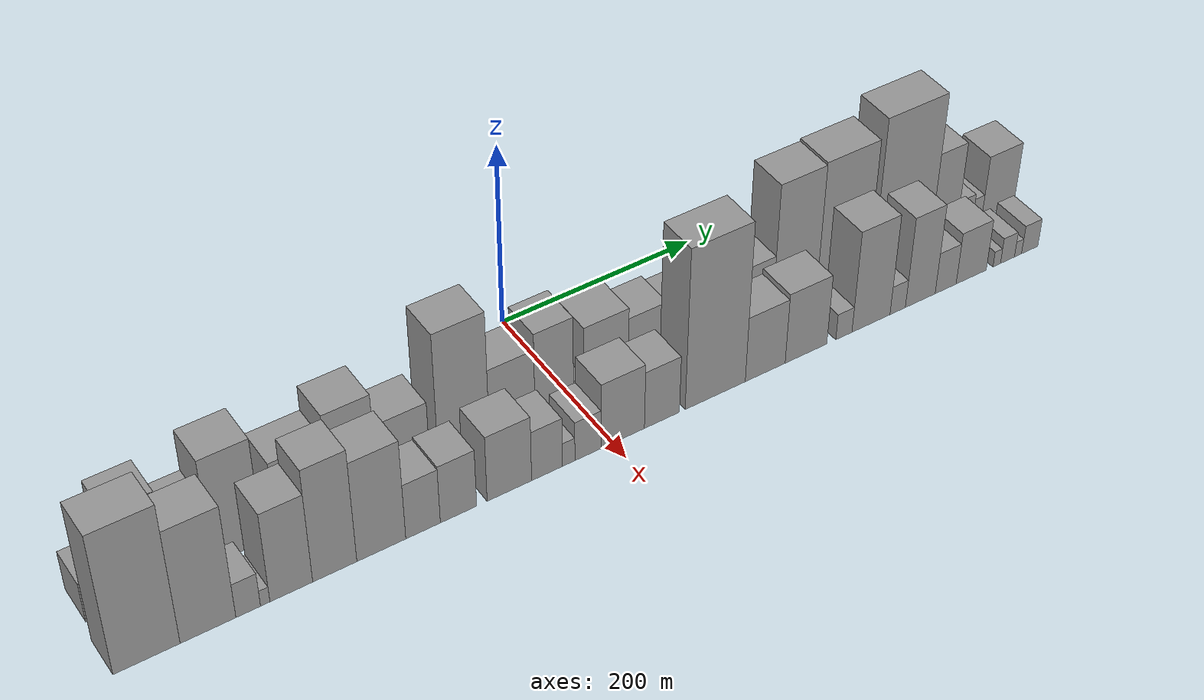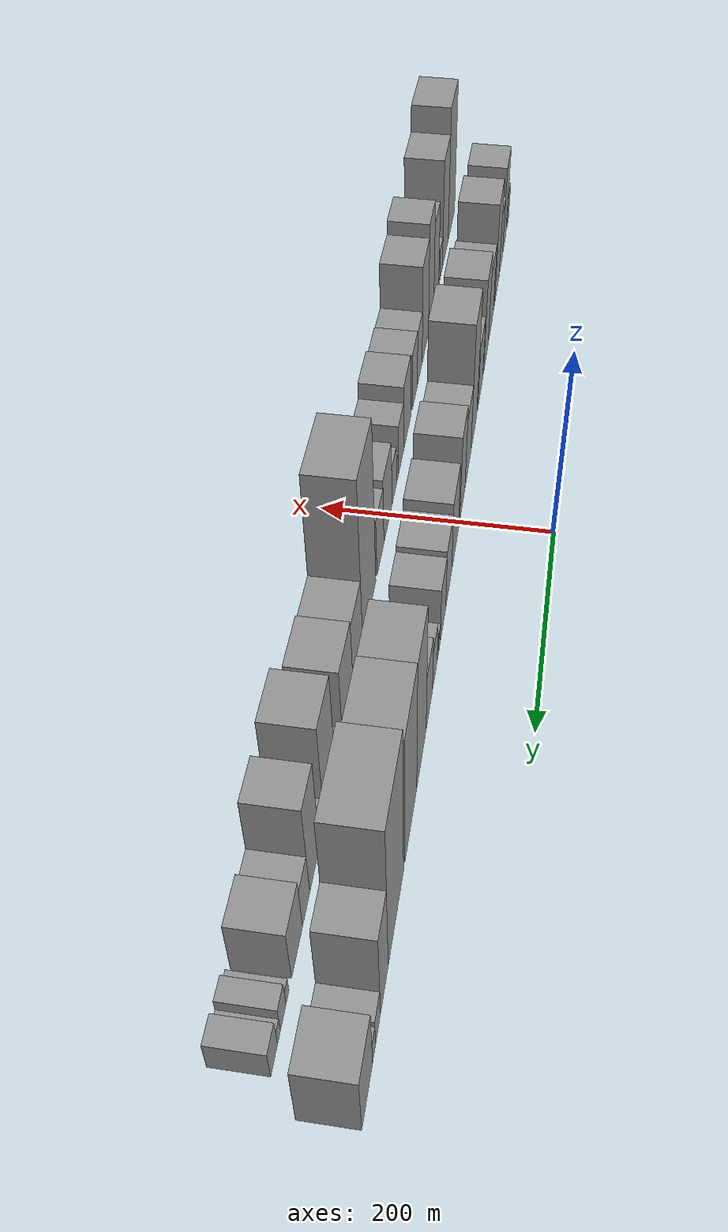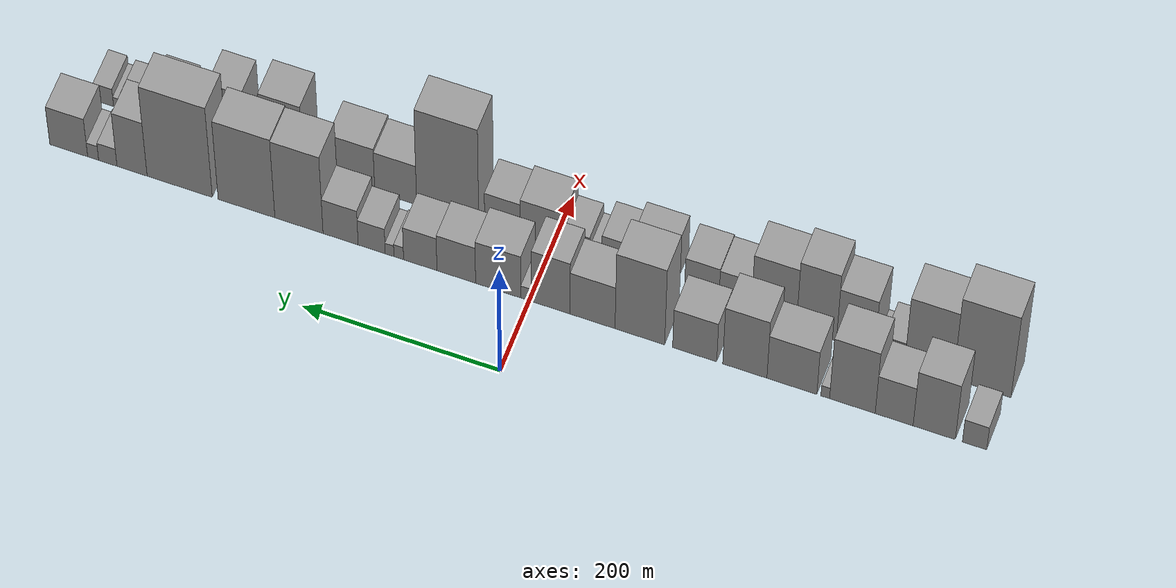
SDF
<sdf version="1.6">
 <world name="default">
  <scene>
   <sky><clouds><speed>12</speed></clouds></sky>
   <ambient>0.4 0.4 0.4 1</ambient>
   <background>0.7 0.7 0.7 1</background>
   <shadows>1</shadows>
  </scene>
  <gravity>0 0 -9.8066</gravity>
  <magnetic_field>6e-06 2.3e-05 -4.2e-05</magnetic_field>
  <physics default="0" name="default_physics" type="ode">
   <ode>
    <solver>
     <type>quick</type>
     <iters>10</iters>
     <sor>1.0</sor>
     <use_dynamic_moi_rescaling>0</use_dynamic_moi_rescaling>
    </solver>
    <constraints>
     <cfm>0</cfm>
     <erp>0.2</erp>
     <contact_max_correcting_vel>100</contact_max_correcting_vel>
     <contact_surface_layer>0.001</contact_surface_layer>
    </constraints>
   </ode>
   <max_step_size>0.004</max_step_size>
   <real_time_factor>1</real_time_factor>
   <real_time_update_rate>250</real_time_update_rate>
  </physics>
  <light name="sun" type="directional">
   <pose>0 0 10 0 0 0</pose>
   <diffuse>0.8 0.8 0.8 1</diffuse>
   <specular>0.2 0.2 0.2 1</specular>
   <attenuation>
    <range>1000</range>
    <constant>0.9</constant>
    <linear>0.01</linear>
    <quadratic>0.001</quadratic>
   </attenuation>
   <direction>-0.5 0.1 -0.9</direction>
  </light>
  <model name="building_1">
   <static>1</static>
   <pose>100.0000 -443.9965 0 0.000000 0.000000 0.000000</pose>
   <link name="link">
    <pose>0 0 22.50 0 0 0</pose>
    <collision name="collision"><geometry><box><size>40.0000 24.0070 45.0000</size></box></geometry></collision>
    <visual name="visual">
     <cast_shadows>0</cast_shadows>
     <geometry><box><size>40.0000 24.0070 45.0000</size></box></geometry>
     <material>
      <script>
       <uri>model://grey_wall/materials/scripts</uri>
       <uri>model://grey_wall/materials/textures</uri>
       <name>vrc/grey_wall</name>
      </script>
     </material>
    </visual>
   </link>
  </model>
  <model name="building_2">
   <static>1</static>
   <pose>100.0000 -404.1018 0 0.000000 0.000000 0.000000</pose>
   <link name="link">
    <pose>0 0 54.00 0 0 0</pose>
    <collision name="collision"><geometry><box><size>40.0000 41.7825 108.0000</size></box></geometry></collision>
    <visual name="visual">
     <cast_shadows>0</cast_shadows>
     <geometry><box><size>40.0000 41.7825 108.0000</size></box></geometry>
     <material>
      <script>
       <uri>model://grey_wall/materials/scripts</uri>
       <uri>model://grey_wall/materials/textures</uri>
       <name>vrc/grey_wall</name>
      </script>
     </material>
    </visual>
   </link>
  </model>
  <model name="building_3">
   <static>1</static>
   <pose>100.0000 -364.4236 0 0.000000 0.000000 0.000000</pose>
   <link name="link">
    <pose>0 0 37.50 0 0 0</pose>
    <collision name="collision"><geometry><box><size>40.0000 37.5738 75.0000</size></box></geometry></collision>
    <visual name="visual">
     <cast_shadows>0</cast_shadows>
     <geometry><box><size>40.0000 37.5738 75.0000</size></box></geometry>
     <material>
      <script>
       <uri>model://grey_wall/materials/scripts</uri>
       <uri>model://grey_wall/materials/textures</uri>
       <name>vrc/grey_wall</name>
      </script>
     </material>
    </visual>
   </link>
  </model>
  <model name="building_4">
   <static>1</static>
   <pose>100.0000 -322.9871 0 0.000000 0.000000 0.000000</pose>
   <link name="link">
    <pose>0 0 60.00 0 0 0</pose>
    <collision name="collision"><geometry><box><size>40.0000 45.2993 120.0000</size></box></geometry></collision>
    <visual name="visual">
     <cast_shadows>0</cast_shadows>
     <geometry><box><size>40.0000 45.2993 120.0000</size></box></geometry>
     <material>
      <script>
       <uri>model://grey_wall/materials/scripts</uri>
       <uri>model://grey_wall/materials/textures</uri>
       <name>vrc/grey_wall</name>
      </script>
     </material>
    </visual>
   </link>
  </model>
  <model name="building_5">
   <static>1</static>
   <pose>100.0000 -296.0059 0 0.000000 0.000000 0.000000</pose>
   <link name="link">
    <pose>0 0 10.50 0 0 0</pose>
    <collision name="collision"><geometry><box><size>40.0000 8.6630 21.0000</size></box></geometry></collision>
    <visual name="visual">
     <cast_shadows>0</cast_shadows>
     <geometry><box><size>40.0000 8.6630 21.0000</size></box></geometry>
     <material>
      <script>
       <uri>model://grey_wall/materials/scripts</uri>
       <uri>model://grey_wall/materials/textures</uri>
       <name>vrc/grey_wall</name>
      </script>
     </material>
    </visual>
   </link>
  </model>
  <model name="building_6">
   <static>1</static>
   <pose>100.0000 -262.7974 0 0.000000 0.000000 0.000000</pose>
   <link name="link">
    <pose>0 0 42.00 0 0 0</pose>
    <collision name="collision"><geometry><box><size>40.0000 49.7541 84.0000</size></box></geometry></collision>
    <visual name="visual">
     <cast_shadows>0</cast_shadows>
     <geometry><box><size>40.0000 49.7541 84.0000</size></box></geometry>
     <material>
      <script>
       <uri>model://grey_wall/materials/scripts</uri>
       <uri>model://grey_wall/materials/textures</uri>
       <name>vrc/grey_wall</name>
      </script>
     </material>
    </visual>
   </link>
  </model>
  <model name="building_7">
   <static>1</static>
   <pose>100.0000 -215.8336 0 0.000000 0.000000 0.000000</pose>
   <link name="link">
    <pose>0 0 55.50 0 0 0</pose>
    <collision name="collision"><geometry><box><size>40.0000 44.1734 111.0000</size></box></geometry></collision>
    <visual name="visual">
     <cast_shadows>0</cast_shadows>
     <geometry><box><size>40.0000 44.1734 111.0000</size></box></geometry>
     <material>
      <script>
       <uri>model://grey_wall/materials/scripts</uri>
       <uri>model://grey_wall/materials/textures</uri>
       <name>vrc/grey_wall</name>
      </script>
     </material>
    </visual>
   </link>
  </model>
  <model name="building_8">
   <static>1</static>
   <pose>100.0000 -165.6648 0 0.000000 0.000000 0.000000</pose>
   <link name="link">
    <pose>0 0 37.50 0 0 0</pose>
    <collision name="collision"><geometry><box><size>40.0000 44.1642 75.0000</size></box></geometry></collision>
    <visual name="visual">
     <cast_shadows>0</cast_shadows>
     <geometry><box><size>40.0000 44.1642 75.0000</size></box></geometry>
     <material>
      <script>
       <uri>model://grey_wall/materials/scripts</uri>
       <uri>model://grey_wall/materials/textures</uri>
       <name>vrc/grey_wall</name>
      </script>
     </material>
    </visual>
   </link>
  </model>
  <model name="building_9">
   <static>1</static>
   <pose>100.0000 -110.6549 0 0.000000 0.000000 0.000000</pose>
   <link name="link">
    <pose>0 0 73.50 0 0 0</pose>
    <collision name="collision"><geometry><box><size>40.0000 49.8557 147.0000</size></box></geometry></collision>
    <visual name="visual">
     <cast_shadows>0</cast_shadows>
     <geometry><box><size>40.0000 49.8557 147.0000</size></box></geometry>
     <material>
      <script>
       <uri>model://grey_wall/materials/scripts</uri>
       <uri>model://grey_wall/materials/textures</uri>
       <name>vrc/grey_wall</name>
      </script>
     </material>
    </visual>
   </link>
  </model>
  <model name="building_10">
   <static>1</static>
   <pose>100.0000 -62.9786 0 0.000000 0.000000 0.000000</pose>
   <link name="link">
    <pose>0 0 40.50 0 0 0</pose>
    <collision name="collision"><geometry><box><size>40.0000 45.4970 81.0000</size></box></geometry></collision>
    <visual name="visual">
     <cast_shadows>0</cast_shadows>
     <geometry><box><size>40.0000 45.4970 81.0000</size></box></geometry>
     <material>
      <script>
       <uri>model://grey_wall/materials/scripts</uri>
       <uri>model://grey_wall/materials/textures</uri>
       <name>vrc/grey_wall</name>
      </script>
     </material>
    </visual>
   </link>
  </model>
  <model name="building_11">
   <static>1</static>
   <pose>100.0000 -20.7784 0 0.000000 0.000000 0.000000</pose>
   <link name="link">
    <pose>0 0 49.50 0 0 0</pose>
    <collision name="collision"><geometry><box><size>40.0000 38.9032 99.0000</size></box></geometry></collision>
    <visual name="visual">
     <cast_shadows>0</cast_shadows>
     <geometry><box><size>40.0000 38.9032 99.0000</size></box></geometry>
     <material>
      <script>
       <uri>model://grey_wall/materials/scripts</uri>
       <uri>model://grey_wall/materials/textures</uri>
       <name>vrc/grey_wall</name>
      </script>
     </material>
    </visual>
   </link>
  </model>
  <model name="building_12">
   <static>1</static>
   <pose>100.0000 3.9678 0 0.000000 0.000000 0.000000</pose>
   <link name="link">
    <pose>0 0 12.00 0 0 0</pose>
    <collision name="collision"><geometry><box><size>40.0000 10.5892 24.0000</size></box></geometry></collision>
    <visual name="visual">
     <cast_shadows>0</cast_shadows>
     <geometry><box><size>40.0000 10.5892 24.0000</size></box></geometry>
     <material>
      <script>
       <uri>model://grey_wall/materials/scripts</uri>
       <uri>model://grey_wall/materials/textures</uri>
       <name>vrc/grey_wall</name>
      </script>
     </material>
    </visual>
   </link>
  </model>
  <model name="building_13">
   <static>1</static>
   <pose>100.0000 32.1512 0 0.000000 0.000000 0.000000</pose>
   <link name="link">
    <pose>0 0 40.50 0 0 0</pose>
    <collision name="collision"><geometry><box><size>40.0000 45.7778 81.0000</size></box></geometry></collision>
    <visual name="visual">
     <cast_shadows>0</cast_shadows>
     <geometry><box><size>40.0000 45.7778 81.0000</size></box></geometry>
     <material>
      <script>
       <uri>model://grey_wall/materials/scripts</uri>
       <uri>model://grey_wall/materials/textures</uri>
       <name>vrc/grey_wall</name>
      </script>
     </material>
    </visual>
   </link>
  </model>
  <model name="building_14">
   <static>1</static>
   <pose>100.0000 74.6157 0 0.000000 0.000000 0.000000</pose>
   <link name="link">
    <pose>0 0 34.50 0 0 0</pose>
    <collision name="collision"><geometry><box><size>40.0000 39.1512 69.0000</size></box></geometry></collision>
    <visual name="visual">
     <cast_shadows>0</cast_shadows>
     <geometry><box><size>40.0000 39.1512 69.0000</size></box></geometry>
     <material>
      <script>
       <uri>model://grey_wall/materials/scripts</uri>
       <uri>model://grey_wall/materials/textures</uri>
       <name>vrc/grey_wall</name>
      </script>
     </material>
    </visual>
   </link>
  </model>
  <model name="building_15">
   <static>1</static>
   <pose>100.0000 111.1428 0 0.000000 0.000000 0.000000</pose>
   <link name="link">
    <pose>0 0 31.50 0 0 0</pose>
    <collision name="collision"><geometry><box><size>40.0000 33.9030 63.0000</size></box></geometry></collision>
    <visual name="visual">
     <cast_shadows>0</cast_shadows>
     <geometry><box><size>40.0000 33.9030 63.0000</size></box></geometry>
     <material>
      <script>
       <uri>model://grey_wall/materials/scripts</uri>
       <uri>model://grey_wall/materials/textures</uri>
       <name>vrc/grey_wall</name>
      </script>
     </material>
    </visual>
   </link>
  </model>
  <model name="building_16">
   <static>1</static>
   <pose>100.0000 132.9962 0 0.000000 0.000000 0.000000</pose>
   <link name="link">
    <pose>0 0 12.00 0 0 0</pose>
    <collision name="collision"><geometry><box><size>40.0000 9.8038 24.0000</size></box></geometry></collision>
    <visual name="visual">
     <cast_shadows>0</cast_shadows>
     <geometry><box><size>40.0000 9.8038 24.0000</size></box></geometry>
     <material>
      <script>
       <uri>model://grey_wall/materials/scripts</uri>
       <uri>model://grey_wall/materials/textures</uri>
       <name>vrc/grey_wall</name>
      </script>
     </material>
    </visual>
   </link>
  </model>
  <model name="building_17">
   <static>1</static>
   <pose>100.0000 142.3267 0 0.000000 0.000000 0.000000</pose>
   <link name="link">
    <pose>0 0 10.50 0 0 0</pose>
    <collision name="collision"><geometry><box><size>40.0000 8.8571 21.0000</size></box></geometry></collision>
    <visual name="visual">
     <cast_shadows>0</cast_shadows>
     <geometry><box><size>40.0000 8.8571 21.0000</size></box></geometry>
     <material>
      <script>
       <uri>model://grey_wall/materials/scripts</uri>
       <uri>model://grey_wall/materials/textures</uri>
       <name>vrc/grey_wall</name>
      </script>
     </material>
    </visual>
   </link>
  </model>
  <model name="building_18">
   <static>1</static>
   <pose>100.0000 160.5470 0 0.000000 0.000000 0.000000</pose>
   <link name="link">
    <pose>0 0 24.00 0 0 0</pose>
    <collision name="collision"><geometry><box><size>40.0000 27.5835 48.0000</size></box></geometry></collision>
    <visual name="visual">
     <cast_shadows>0</cast_shadows>
     <geometry><box><size>40.0000 27.5835 48.0000</size></box></geometry>
     <material>
      <script>
       <uri>model://grey_wall/materials/scripts</uri>
       <uri>model://grey_wall/materials/textures</uri>
       <name>vrc/grey_wall</name>
      </script>
     </material>
    </visual>
   </link>
  </model>
  <model name="building_19">
   <static>1</static>
   <pose>100.0000 192.2544 0 0.000000 0.000000 0.000000</pose>
   <link name="link">
    <pose>0 0 33.00 0 0 0</pose>
    <collision name="collision"><geometry><box><size>40.0000 35.8312 66.0000</size></box></geometry></collision>
    <visual name="visual">
     <cast_shadows>0</cast_shadows>
     <geometry><box><size>40.0000 35.8312 66.0000</size></box></geometry>
     <material>
      <script>
       <uri>model://grey_wall/materials/scripts</uri>
       <uri>model://grey_wall/materials/textures</uri>
       <name>vrc/grey_wall</name>
      </script>
     </material>
    </visual>
   </link>
  </model>
  <model name="building_20">
   <static>1</static>
   <pose>100.0000 234.7998 0 0.000000 0.000000 0.000000</pose>
   <link name="link">
    <pose>0 0 73.50 0 0 0</pose>
    <collision name="collision"><geometry><box><size>40.0000 49.2597 147.0000</size></box></geometry></collision>
    <visual name="visual">
     <cast_shadows>0</cast_shadows>
     <geometry><box><size>40.0000 49.2597 147.0000</size></box></geometry>
     <material>
      <script>
       <uri>model://grey_wall/materials/scripts</uri>
       <uri>model://grey_wall/materials/textures</uri>
       <name>vrc/grey_wall</name>
      </script>
     </material>
    </visual>
   </link>
  </model>
  <model name="building_21">
   <static>1</static>
   <pose>100.0000 288.5176 0 0.000000 0.000000 0.000000</pose>
   <link name="link">
    <pose>0 0 75.00 0 0 0</pose>
    <collision name="collision"><geometry><box><size>40.0000 58.1758 150.0000</size></box></geometry></collision>
    <visual name="visual">
     <cast_shadows>0</cast_shadows>
     <geometry><box><size>40.0000 58.1758 150.0000</size></box></geometry>
     <material>
      <script>
       <uri>model://grey_wall/materials/scripts</uri>
       <uri>model://grey_wall/materials/textures</uri>
       <name>vrc/grey_wall</name>
      </script>
     </material>
    </visual>
   </link>
  </model>
  <model name="building_22">
   <static>1</static>
   <pose>100.0000 357.1346 0 0.000000 0.000000 0.000000</pose>
   <link name="link">
    <pose>0 0 85.50 0 0 0</pose>
    <collision name="collision"><geometry><box><size>40.0000 67.0583 171.0000</size></box></geometry></collision>
    <visual name="visual">
     <cast_shadows>0</cast_shadows>
     <geometry><box><size>40.0000 67.0583 171.0000</size></box></geometry>
     <material>
      <script>
       <uri>model://grey_wall/materials/scripts</uri>
       <uri>model://grey_wall/materials/textures</uri>
       <name>vrc/grey_wall</name>
      </script>
     </material>
    </visual>
   </link>
  </model>
  <model name="building_23">
   <static>1</static>
   <pose>100.0000 406.2230 0 0.000000 0.000000 0.000000</pose>
   <link name="link">
    <pose>0 0 51.00 0 0 0</pose>
    <collision name="collision"><geometry><box><size>40.0000 31.1185 102.0000</size></box></geometry></collision>
    <visual name="visual">
     <cast_shadows>0</cast_shadows>
     <geometry><box><size>40.0000 31.1185 102.0000</size></box></geometry>
     <material>
      <script>
       <uri>model://grey_wall/materials/scripts</uri>
       <uri>model://grey_wall/materials/textures</uri>
       <name>vrc/grey_wall</name>
      </script>
     </material>
    </visual>
   </link>
  </model>
  <model name="building_24">
   <static>1</static>
   <pose>100.0000 431.2539 0 0.000000 0.000000 0.000000</pose>
   <link name="link">
    <pose>0 0 16.50 0 0 0</pose>
    <collision name="collision"><geometry><box><size>40.0000 18.9434 33.0000</size></box></geometry></collision>
    <visual name="visual">
     <cast_shadows>0</cast_shadows>
     <geometry><box><size>40.0000 18.9434 33.0000</size></box></geometry>
     <material>
      <script>
       <uri>model://grey_wall/materials/scripts</uri>
       <uri>model://grey_wall/materials/textures</uri>
       <name>vrc/grey_wall</name>
      </script>
     </material>
    </visual>
   </link>
  </model>
  <model name="building_25">
   <static>1</static>
   <pose>100.0000 446.4016 0 0.000000 0.000000 0.000000</pose>
   <link name="link">
    <pose>0 0 13.50 0 0 0</pose>
    <collision name="collision"><geometry><box><size>40.0000 11.3519 27.0000</size></box></geometry></collision>
    <visual name="visual">
     <cast_shadows>0</cast_shadows>
     <geometry><box><size>40.0000 11.3519 27.0000</size></box></geometry>
     <material>
      <script>
       <uri>model://grey_wall/materials/scripts</uri>
       <uri>model://grey_wall/materials/textures</uri>
       <name>vrc/grey_wall</name>
      </script>
     </material>
    </visual>
   </link>
  </model>
  <model name="building_26">
   <static>1</static>
   <pose>100.0000 471.6284 0 0.000000 0.000000 0.000000</pose>
   <link name="link">
    <pose>0 0 36.00 0 0 0</pose>
    <collision name="collision"><geometry><box><size>40.0000 39.1017 72.0000</size></box></geometry></collision>
    <visual name="visual">
     <cast_shadows>0</cast_shadows>
     <geometry><box><size>40.0000 39.1017 72.0000</size></box></geometry>
     <material>
      <script>
       <uri>model://grey_wall/materials/scripts</uri>
       <uri>model://grey_wall/materials/textures</uri>
       <name>vrc/grey_wall</name>
      </script>
     </material>
    </visual>
   </link>
  </model>
  <model name="building_27">
   <static>1</static>
   <pose>160.0000 -431.4479 0 0.000000 0.000000 0.000000</pose>
   <link name="link">
    <pose>0 0 79.50 0 0 0</pose>
    <collision name="collision"><geometry><box><size>40.0000 57.1043 159.0000</size></box></geometry></collision>
    <visual name="visual">
     <cast_shadows>0</cast_shadows>
     <geometry><box><size>40.0000 57.1043 159.0000</size></box></geometry>
     <material>
      <script>
       <uri>model://grey_wall/materials/scripts</uri>
       <uri>model://grey_wall/materials/textures</uri>
       <name>vrc/grey_wall</name>
      </script>
     </material>
    </visual>
   </link>
  </model>
  <model name="building_28">
   <static>1</static>
   <pose>160.0000 -378.7312 0 0.000000 0.000000 0.000000</pose>
   <link name="link">
    <pose>0 0 64.50 0 0 0</pose>
    <collision name="collision"><geometry><box><size>40.0000 48.3291 129.0000</size></box></geometry></collision>
    <visual name="visual">
     <cast_shadows>0</cast_shadows>
     <geometry><box><size>40.0000 48.3291 129.0000</size></box></geometry>
     <material>
      <script>
       <uri>model://grey_wall/materials/scripts</uri>
       <uri>model://grey_wall/materials/textures</uri>
       <name>vrc/grey_wall</name>
      </script>
     </material>
    </visual>
   </link>
  </model>
  <model name="building_29">
   <static>1</static>
   <pose>160.0000 -343.7472 0 0.000000 0.000000 0.000000</pose>
   <link name="link">
    <pose>0 0 19.50 0 0 0</pose>
    <collision name="collision"><geometry><box><size>40.0000 21.6389 39.0000</size></box></geometry></collision>
    <visual name="visual">
     <cast_shadows>0</cast_shadows>
     <geometry><box><size>40.0000 21.6389 39.0000</size></box></geometry>
     <material>
      <script>
       <uri>model://grey_wall/materials/scripts</uri>
       <uri>model://grey_wall/materials/textures</uri>
       <name>vrc/grey_wall</name>
      </script>
     </material>
    </visual>
   </link>
  </model>
  <model name="building_30">
   <static>1</static>
   <pose>160.0000 -328.7822 0 0.000000 0.000000 0.000000</pose>
   <link name="link">
    <pose>0 0 9.00 0 0 0</pose>
    <collision name="collision"><geometry><box><size>40.0000 8.2911 18.0000</size></box></geometry></collision>
    <visual name="visual">
     <cast_shadows>0</cast_shadows>
     <geometry><box><size>40.0000 8.2911 18.0000</size></box></geometry>
     <material>
      <script>
       <uri>model://grey_wall/materials/scripts</uri>
       <uri>model://grey_wall/materials/textures</uri>
       <name>vrc/grey_wall</name>
      </script>
     </material>
    </visual>
   </link>
  </model>
  <model name="building_31">
   <static>1</static>
   <pose>160.0000 -305.5007 0 0.000000 0.000000 0.000000</pose>
   <link name="link">
    <pose>0 0 51.00 0 0 0</pose>
    <collision name="collision"><geometry><box><size>40.0000 38.2719 102.0000</size></box></geometry></collision>
    <visual name="visual">
     <cast_shadows>0</cast_shadows>
     <geometry><box><size>40.0000 38.2719 102.0000</size></box></geometry>
     <material>
      <script>
       <uri>model://grey_wall/materials/scripts</uri>
       <uri>model://grey_wall/materials/textures</uri>
       <name>vrc/grey_wall</name>
      </script>
     </material>
    </visual>
   </link>
  </model>
  <model name="building_32">
   <static>1</static>
   <pose>160.0000 -266.3195 0 0.000000 0.000000 0.000000</pose>
   <link name="link">
    <pose>0 0 64.50 0 0 0</pose>
    <collision name="collision"><geometry><box><size>40.0000 40.0905 129.0000</size></box></geometry></collision>
    <visual name="visual">
     <cast_shadows>0</cast_shadows>
     <geometry><box><size>40.0000 40.0905 129.0000</size></box></geometry>
     <material>
      <script>
       <uri>model://grey_wall/materials/scripts</uri>
       <uri>model://grey_wall/materials/textures</uri>
       <name>vrc/grey_wall</name>
      </script>
     </material>
    </visual>
   </link>
  </model>
  <model name="building_33">
   <static>1</static>
   <pose>160.0000 -223.6515 0 0.000000 0.000000 0.000000</pose>
   <link name="link">
    <pose>0 0 57.00 0 0 0</pose>
    <collision name="collision"><geometry><box><size>40.0000 45.2455 114.0000</size></box></geometry></collision>
    <visual name="visual">
     <cast_shadows>0</cast_shadows>
     <geometry><box><size>40.0000 45.2455 114.0000</size></box></geometry>
     <material>
      <script>
       <uri>model://grey_wall/materials/scripts</uri>
       <uri>model://grey_wall/materials/textures</uri>
       <name>vrc/grey_wall</name>
      </script>
     </material>
    </visual>
   </link>
  </model>
  <model name="building_34">
   <static>1</static>
   <pose>160.0000 -184.8101 0 0.000000 0.000000 0.000000</pose>
   <link name="link">
    <pose>0 0 31.50 0 0 0</pose>
    <collision name="collision"><geometry><box><size>40.0000 32.4373 63.0000</size></box></geometry></collision>
    <visual name="visual">
     <cast_shadows>0</cast_shadows>
     <geometry><box><size>40.0000 32.4373 63.0000</size></box></geometry>
     <material>
      <script>
       <uri>model://grey_wall/materials/scripts</uri>
       <uri>model://grey_wall/materials/textures</uri>
       <name>vrc/grey_wall</name>
      </script>
     </material>
    </visual>
   </link>
  </model>
  <model name="building_35">
   <static>1</static>
   <pose>160.0000 -151.2886 0 0.000000 0.000000 0.000000</pose>
   <link name="link">
    <pose>0 0 33.00 0 0 0</pose>
    <collision name="collision"><geometry><box><size>40.0000 34.6057 66.0000</size></box></geometry></collision>
    <visual name="visual">
     <cast_shadows>0</cast_shadows>
     <geometry><box><size>40.0000 34.6057 66.0000</size></box></geometry>
     <material>
      <script>
       <uri>model://grey_wall/materials/scripts</uri>
       <uri>model://grey_wall/materials/textures</uri>
       <name>vrc/grey_wall</name>
      </script>
     </material>
    </visual>
   </link>
  </model>
  <model name="building_36">
   <static>1</static>
   <pose>160.0000 -102.4016 0 0.000000 0.000000 0.000000</pose>
   <link name="link">
    <pose>0 0 37.50 0 0 0</pose>
    <collision name="collision"><geometry><box><size>40.0000 43.1683 75.0000</size></box></geometry></collision>
    <visual name="visual">
     <cast_shadows>0</cast_shadows>
     <geometry><box><size>40.0000 43.1683 75.0000</size></box></geometry>
     <material>
      <script>
       <uri>model://grey_wall/materials/scripts</uri>
       <uri>model://grey_wall/materials/textures</uri>
       <name>vrc/grey_wall</name>
      </script>
     </material>
    </visual>
   </link>
  </model>
  <model name="building_37">
   <static>1</static>
   <pose>160.0000 -65.6326 0 0.000000 0.000000 0.000000</pose>
   <link name="link">
    <pose>0 0 28.50 0 0 0</pose>
    <collision name="collision"><geometry><box><size>40.0000 30.3695 57.0000</size></box></geometry></collision>
    <visual name="visual">
     <cast_shadows>0</cast_shadows>
     <geometry><box><size>40.0000 30.3695 57.0000</size></box></geometry>
     <material>
      <script>
       <uri>model://grey_wall/materials/scripts</uri>
       <uri>model://grey_wall/materials/textures</uri>
       <name>vrc/grey_wall</name>
      </script>
     </material>
    </visual>
   </link>
  </model>
  <model name="building_38">
   <static>1</static>
   <pose>160.0000 -44.2591 0 0.000000 0.000000 0.000000</pose>
   <link name="link">
    <pose>0 0 13.50 0 0 0</pose>
    <collision name="collision"><geometry><box><size>40.0000 12.3775 27.0000</size></box></geometry></collision>
    <visual name="visual">
     <cast_shadows>0</cast_shadows>
     <geometry><box><size>40.0000 12.3775 27.0000</size></box></geometry>
     <material>
      <script>
       <uri>model://grey_wall/materials/scripts</uri>
       <uri>model://grey_wall/materials/textures</uri>
       <name>vrc/grey_wall</name>
      </script>
     </material>
    </visual>
   </link>
  </model>
  <model name="building_39">
   <static>1</static>
   <pose>160.0000 -25.0416 0 0.000000 0.000000 0.000000</pose>
   <link name="link">
    <pose>0 0 22.50 0 0 0</pose>
    <collision name="collision"><geometry><box><size>40.0000 26.0576 45.0000</size></box></geometry></collision>
    <visual name="visual">
     <cast_shadows>0</cast_shadows>
     <geometry><box><size>40.0000 26.0576 45.0000</size></box></geometry>
     <material>
      <script>
       <uri>model://grey_wall/materials/scripts</uri>
       <uri>model://grey_wall/materials/textures</uri>
       <name>vrc/grey_wall</name>
      </script>
     </material>
    </visual>
   </link>
  </model>
  <model name="building_40">
   <static>1</static>
   <pose>160.0000 10.0388 0 0.000000 0.000000 0.000000</pose>
   <link name="link">
    <pose>0 0 37.50 0 0 0</pose>
    <collision name="collision"><geometry><box><size>40.0000 44.1032 75.0000</size></box></geometry></collision>
    <visual name="visual">
     <cast_shadows>0</cast_shadows>
     <geometry><box><size>40.0000 44.1032 75.0000</size></box></geometry>
     <material>
      <script>
       <uri>model://grey_wall/materials/scripts</uri>
       <uri>model://grey_wall/materials/textures</uri>
       <name>vrc/grey_wall</name>
      </script>
     </material>
    </visual>
   </link>
  </model>
  <model name="building_41">
   <static>1</static>
   <pose>160.0000 50.1400 0 0.000000 0.000000 0.000000</pose>
   <link name="link">
    <pose>0 0 33.00 0 0 0</pose>
    <collision name="collision"><geometry><box><size>40.0000 36.0991 66.0000</size></box></geometry></collision>
    <visual name="visual">
     <cast_shadows>0</cast_shadows>
     <geometry><box><size>40.0000 36.0991 66.0000</size></box></geometry>
     <material>
      <script>
       <uri>model://grey_wall/materials/scripts</uri>
       <uri>model://grey_wall/materials/textures</uri>
       <name>vrc/grey_wall</name>
      </script>
     </material>
    </visual>
   </link>
  </model>
  <model name="building_42">
   <static>1</static>
   <pose>160.0000 105.8316 0 0.000000 0.000000 0.000000</pose>
   <link name="link">
    <pose>0 0 91.50 0 0 0</pose>
    <collision name="collision"><geometry><box><size>40.0000 63.2841 183.0000</size></box></geometry></collision>
    <visual name="visual">
     <cast_shadows>0</cast_shadows>
     <geometry><box><size>40.0000 63.2841 183.0000</size></box></geometry>
     <material>
      <script>
       <uri>model://grey_wall/materials/scripts</uri>
       <uri>model://grey_wall/materials/textures</uri>
       <name>vrc/grey_wall</name>
      </script>
     </material>
    </visual>
   </link>
  </model>
  <model name="building_43">
   <static>1</static>
   <pose>160.0000 158.9096 0 0.000000 0.000000 0.000000</pose>
   <link name="link">
    <pose>0 0 37.50 0 0 0</pose>
    <collision name="collision"><geometry><box><size>40.0000 42.8721 75.0000</size></box></geometry></collision>
    <visual name="visual">
     <cast_shadows>0</cast_shadows>
     <geometry><box><size>40.0000 42.8721 75.0000</size></box></geometry>
     <material>
      <script>
       <uri>model://grey_wall/materials/scripts</uri>
       <uri>model://grey_wall/materials/textures</uri>
       <name>vrc/grey_wall</name>
      </script>
     </material>
    </visual>
   </link>
  </model>
  <model name="building_44">
   <static>1</static>
   <pose>160.0000 203.1204 0 0.000000 0.000000 0.000000</pose>
   <link name="link">
    <pose>0 0 40.50 0 0 0</pose>
    <collision name="collision"><geometry><box><size>40.0000 45.5495 81.0000</size></box></geometry></collision>
    <visual name="visual">
     <cast_shadows>0</cast_shadows>
     <geometry><box><size>40.0000 45.5495 81.0000</size></box></geometry>
     <material>
      <script>
       <uri>model://grey_wall/materials/scripts</uri>
       <uri>model://grey_wall/materials/textures</uri>
       <name>vrc/grey_wall</name>
      </script>
     </material>
    </visual>
   </link>
  </model>
  <model name="building_45">
   <static>1</static>
   <pose>160.0000 244.8212 0 0.000000 0.000000 0.000000</pose>
   <link name="link">
    <pose>0 0 15.00 0 0 0</pose>
    <collision name="collision"><geometry><box><size>40.0000 17.8520 30.0000</size></box></geometry></collision>
    <visual name="visual">
     <cast_shadows>0</cast_shadows>
     <geometry><box><size>40.0000 17.8520 30.0000</size></box></geometry>
     <material>
      <script>
       <uri>model://grey_wall/materials/scripts</uri>
       <uri>model://grey_wall/materials/textures</uri>
       <name>vrc/grey_wall</name>
      </script>
     </material>
    </visual>
   </link>
  </model>
  <model name="building_46">
   <static>1</static>
   <pose>160.0000 275.0824 0 0.000000 0.000000 0.000000</pose>
   <link name="link">
    <pose>0 0 58.50 0 0 0</pose>
    <collision name="collision"><geometry><box><size>40.0000 42.6705 117.0000</size></box></geometry></collision>
    <visual name="visual">
     <cast_shadows>0</cast_shadows>
     <geometry><box><size>40.0000 42.6705 117.0000</size></box></geometry>
     <material>
      <script>
       <uri>model://grey_wall/materials/scripts</uri>
       <uri>model://grey_wall/materials/textures</uri>
       <name>vrc/grey_wall</name>
      </script>
     </material>
    </visual>
   </link>
  </model>
  <model name="building_47">
   <static>1</static>
   <pose>160.0000 305.1480 0 0.000000 0.000000 0.000000</pose>
   <link name="link">
    <pose>0 0 16.50 0 0 0</pose>
    <collision name="collision"><geometry><box><size>40.0000 17.4606 33.0000</size></box></geometry></collision>
    <visual name="visual">
     <cast_shadows>0</cast_shadows>
     <geometry><box><size>40.0000 17.4606 33.0000</size></box></geometry>
     <material>
      <script>
       <uri>model://grey_wall/materials/scripts</uri>
       <uri>model://grey_wall/materials/textures</uri>
       <name>vrc/grey_wall</name>
      </script>
     </material>
    </visual>
   </link>
  </model>
  <model name="building_48">
   <static>1</static>
   <pose>160.0000 330.9484 0 0.000000 0.000000 0.000000</pose>
   <link name="link">
    <pose>0 0 52.50 0 0 0</pose>
    <collision name="collision"><geometry><box><size>40.0000 34.1402 105.0000</size></box></geometry></collision>
    <visual name="visual">
     <cast_shadows>0</cast_shadows>
     <geometry><box><size>40.0000 34.1402 105.0000</size></box></geometry>
     <material>
      <script>
       <uri>model://grey_wall/materials/scripts</uri>
       <uri>model://grey_wall/materials/textures</uri>
       <name>vrc/grey_wall</name>
      </script>
     </material>
    </visual>
   </link>
  </model>
  <model name="building_49">
   <static>1</static>
   <pose>160.0000 360.1881 0 0.000000 0.000000 0.000000</pose>
   <link name="link">
    <pose>0 0 24.00 0 0 0</pose>
    <collision name="collision"><geometry><box><size>40.0000 24.3393 48.0000</size></box></geometry></collision>
    <visual name="visual">
     <cast_shadows>0</cast_shadows>
     <geometry><box><size>40.0000 24.3393 48.0000</size></box></geometry>
     <material>
      <script>
       <uri>model://grey_wall/materials/scripts</uri>
       <uri>model://grey_wall/materials/textures</uri>
       <name>vrc/grey_wall</name>
      </script>
     </material>
    </visual>
   </link>
  </model>
  <model name="building_50">
   <static>1</static>
   <pose>160.0000 389.9741 0 0.000000 0.000000 0.000000</pose>
   <link name="link">
    <pose>0 0 30.00 0 0 0</pose>
    <collision name="collision"><geometry><box><size>40.0000 35.2327 60.0000</size></box></geometry></collision>
    <visual name="visual">
     <cast_shadows>0</cast_shadows>
     <geometry><box><size>40.0000 35.2327 60.0000</size></box></geometry>
     <material>
      <script>
       <uri>model://grey_wall/materials/scripts</uri>
       <uri>model://grey_wall/materials/textures</uri>
       <name>vrc/grey_wall</name>
      </script>
     </material>
    </visual>
   </link>
  </model>
  <model name="building_51">
   <static>1</static>
   <pose>160.0000 420.0163 0 0.000000 0.000000 0.000000</pose>
   <link name="link">
    <pose>0 0 9.00 0 0 0</pose>
    <collision name="collision"><geometry><box><size>40.0000 8.8517 18.0000</size></box></geometry></collision>
    <visual name="visual">
     <cast_shadows>0</cast_shadows>
     <geometry><box><size>40.0000 8.8517 18.0000</size></box></geometry>
     <material>
      <script>
       <uri>model://grey_wall/materials/scripts</uri>
       <uri>model://grey_wall/materials/textures</uri>
       <name>vrc/grey_wall</name>
      </script>
     </material>
    </visual>
   </link>
  </model>
  <model name="building_52">
   <static>1</static>
   <pose>160.0000 432.7677 0 0.000000 0.000000 0.000000</pose>
   <link name="link">
    <pose>0 0 15.00 0 0 0</pose>
    <collision name="collision"><geometry><box><size>40.0000 16.6510 30.0000</size></box></geometry></collision>
    <visual name="visual">
     <cast_shadows>0</cast_shadows>
     <geometry><box><size>40.0000 16.6510 30.0000</size></box></geometry>
     <material>
      <script>
       <uri>model://grey_wall/materials/scripts</uri>
       <uri>model://grey_wall/materials/textures</uri>
       <name>vrc/grey_wall</name>
      </script>
     </material>
    </visual>
   </link>
  </model>
  <model name="building_53">
   <static>1</static>
   <pose>160.0000 445.3201 0 0.000000 0.000000 0.000000</pose>
   <link name="link">
    <pose>0 0 9.00 0 0 0</pose>
    <collision name="collision"><geometry><box><size>40.0000 8.4538 18.0000</size></box></geometry></collision>
    <visual name="visual">
     <cast_shadows>0</cast_shadows>
     <geometry><box><size>40.0000 8.4538 18.0000</size></box></geometry>
     <material>
      <script>
       <uri>model://grey_wall/materials/scripts</uri>
       <uri>model://grey_wall/materials/textures</uri>
       <name>vrc/grey_wall</name>
      </script>
     </material>
    </visual>
   </link>
  </model>
  <model name="building_54">
   <static>1</static>
   <pose>160.0000 459.3205 0 0.000000 0.000000 0.000000</pose>
   <link name="link">
    <pose>0 0 16.50 0 0 0</pose>
    <collision name="collision"><geometry><box><size>40.0000 19.5470 33.0000</size></box></geometry></collision>
    <visual name="visual">
     <cast_shadows>0</cast_shadows>
     <geometry><box><size>40.0000 19.5470 33.0000</size></box></geometry>
     <material>
      <script>
       <uri>model://grey_wall/materials/scripts</uri>
       <uri>model://grey_wall/materials/textures</uri>
       <name>vrc/grey_wall</name>
      </script>
     </material>
    </visual>
   </link>
  </model>
 </world>
</sdf>
